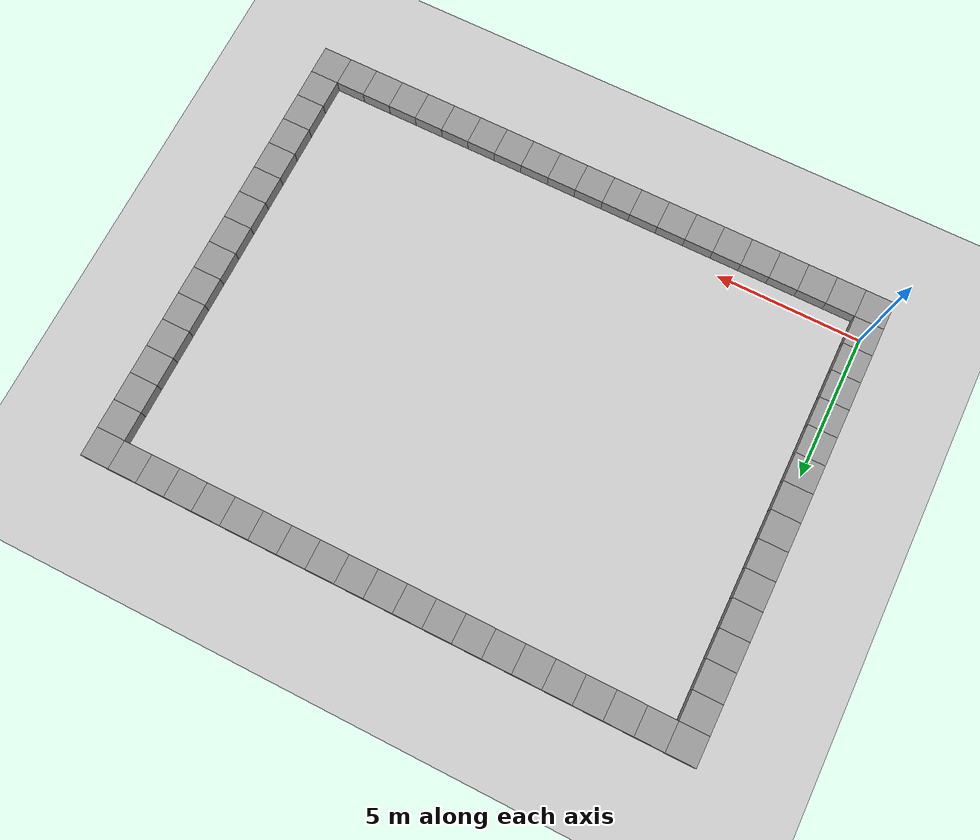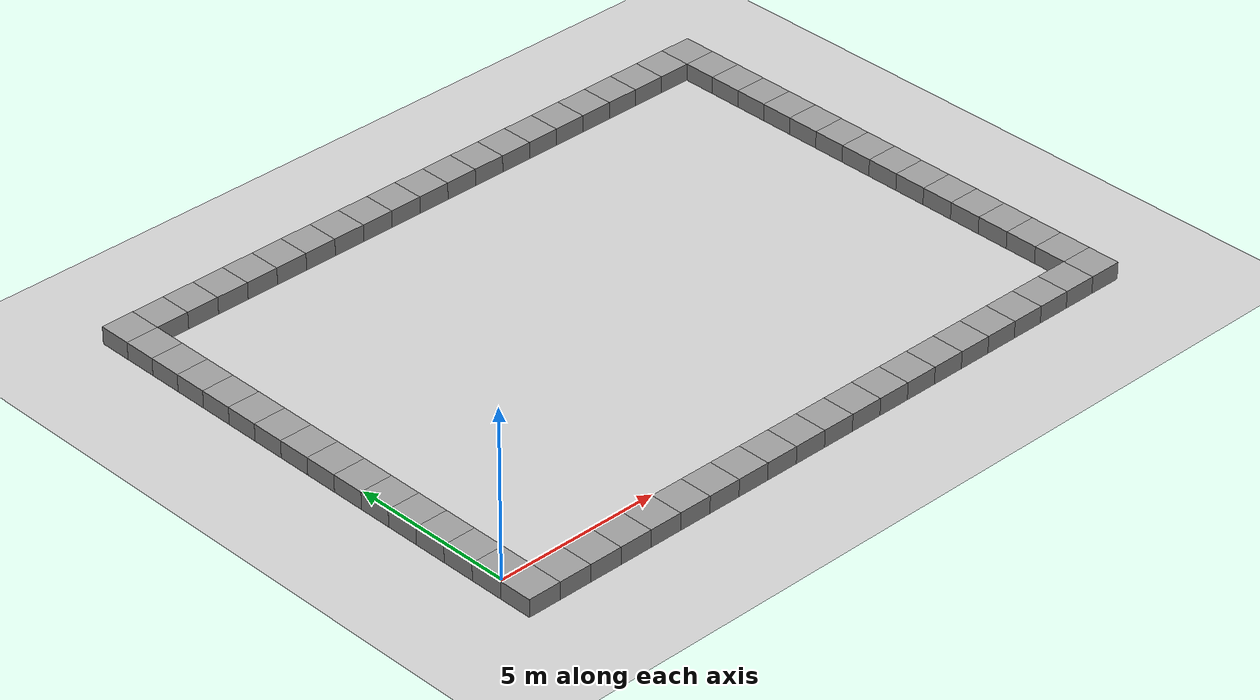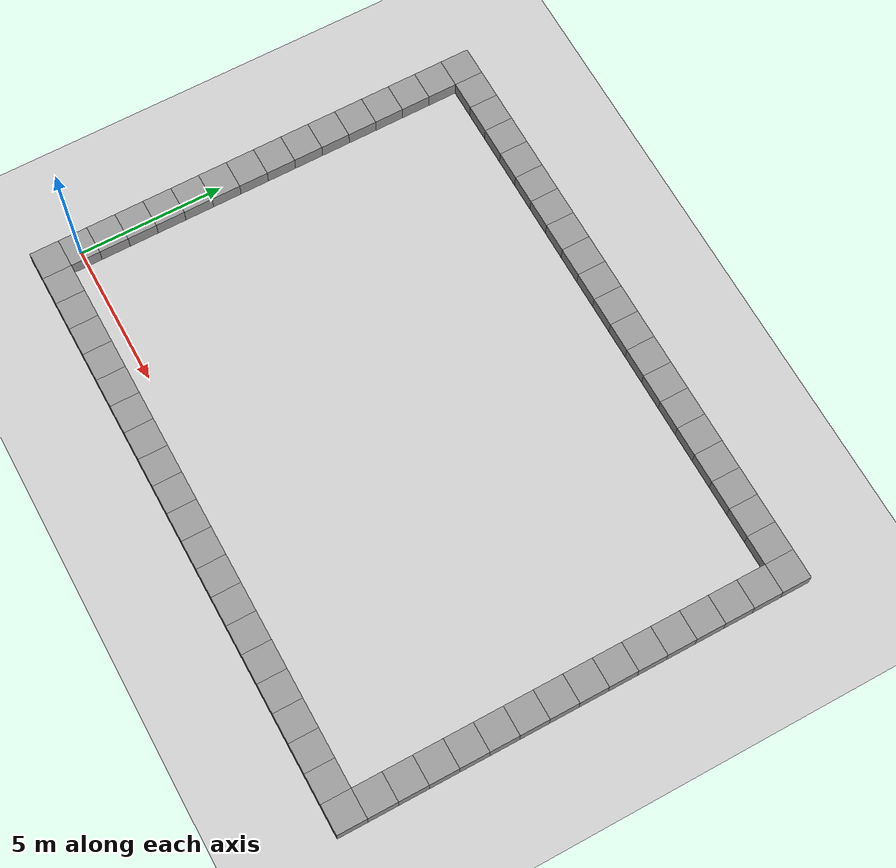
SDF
<sdf version="1.4">
 <world name="default">
  <light name="sun" type="directional">
   <pose>0 0 10 0 -0 0</pose>
   <diffuse>0.8 0.8 0.8 1</diffuse>
   <specular>0.2 0.2 0.2 1</specular>
   <attenuation>
    <range>1000</range>
    <constant>0.9</constant>
    <linear>0.01</linear>
    <quadratic>0.001</quadratic>
   </attenuation>
   <direction>-0.5 0.1 -0.9</direction>
  </light>
  <model name="ground_plane">
   <static>1</static>
   <link name="link">
    <collision name="collision">
     <geometry><plane><normal>0 0 1</normal><size>100 100</size></plane></geometry>
     <surface><friction><ode><mu>100</mu><mu2>50</mu2></ode></friction></surface>
    </collision>
    <visual name="visual">
     <cast_shadows>0</cast_shadows>
     <geometry><plane><normal>0 0 1</normal><size>100 100</size></plane></geometry>
     <material>
      <script><uri>file://media/materials/scripts/gazebo.material</uri><name>Gazebo/Grey</name></script>
     </material>
    </visual>
    <velocity_decay><linear>0</linear><angular>0</angular></velocity_decay>
   </link>
  </model>
  <physics type="ode">
   <max_step_size>0.001</max_step_size>
   <real_time_factor>1</real_time_factor>
   <real_time_update_rate>1000</real_time_update_rate>
   <gravity>0 0 -9.8</gravity>
  </physics>
  <scene><ambient>0.4 0.4 0.4 1</ambient><background>0.7 0.7 0.7 1</background><shadows>1</shadows></scene>
  <spherical_coordinates>
   <surface_model>EARTH_WGS84</surface_model>
   <latitude_deg>0</latitude_deg>
   <longitude_deg>0</longitude_deg>
   <elevation>0</elevation>
   <heading_deg>0</heading_deg>
  </spherical_coordinates>
  <model name="unit_box_1">
   <pose>0 -1 0 0 -0 0</pose>
   <link name="link">
    <inertial>
     <mass>1</mass>
     <inertia><ixx>1</ixx><ixy>0</ixy><ixz>0</ixz><iyy>1</iyy><iyz>0</iyz><izz>1</izz></inertia>
    </inertial>
    <collision name="collision"><geometry><box><size>1 1 1</size></box></geometry></collision>
    <visual name="visual">
     <geometry><box><size>1 1 1</size></box></geometry>
     <material>
      <script><uri>file://media/materials/scripts/gazebo.material</uri><name>Gazebo/Grey</name></script>
     </material>
    </visual>
    <velocity_decay><linear>0</linear><angular>0</angular></velocity_decay>
   </link>
   <static>1</static>
  </model>
  <model name="unit_box_2">
   <pose>1 -1 0 0 -0 0</pose>
   <link name="link">
    <inertial>
     <mass>1</mass>
     <inertia><ixx>1</ixx><ixy>0</ixy><ixz>0</ixz><iyy>1</iyy><iyz>0</iyz><izz>1</izz></inertia>
    </inertial>
    <collision name="collision"><geometry><box><size>1 1 1</size></box></geometry></collision>
    <visual name="visual">
     <geometry><box><size>1 1 1</size></box></geometry>
     <material>
      <script><uri>file://media/materials/scripts/gazebo.material</uri><name>Gazebo/Grey</name></script>
     </material>
    </visual>
    <velocity_decay><linear>0</linear><angular>0</angular></velocity_decay>
   </link>
   <static>1</static>
  </model>
  <model name="unit_box_3">
   <pose>2 -1 0 0 -0 0</pose>
   <link name="link">
    <inertial>
     <mass>1</mass>
     <inertia><ixx>1</ixx><ixy>0</ixy><ixz>0</ixz><iyy>1</iyy><iyz>0</iyz><izz>1</izz></inertia>
    </inertial>
    <collision name="collision"><geometry><box><size>1 1 1</size></box></geometry></collision>
    <visual name="visual">
     <geometry><box><size>1 1 1</size></box></geometry>
     <material>
      <script><uri>file://media/materials/scripts/gazebo.material</uri><name>Gazebo/Grey</name></script>
     </material>
    </visual>
    <velocity_decay><linear>0</linear><angular>0</angular></velocity_decay>
   </link>
   <static>1</static>
  </model>
  <model name="unit_box_4">
   <pose>3 -1 0 0 -0 0</pose>
   <link name="link">
    <inertial>
     <mass>1</mass>
     <inertia><ixx>1</ixx><ixy>0</ixy><ixz>0</ixz><iyy>1</iyy><iyz>0</iyz><izz>1</izz></inertia>
    </inertial>
    <collision name="collision"><geometry><box><size>1 1 1</size></box></geometry></collision>
    <visual name="visual">
     <geometry><box><size>1 1 1</size></box></geometry>
     <material>
      <script><uri>file://media/materials/scripts/gazebo.material</uri><name>Gazebo/Grey</name></script>
     </material>
    </visual>
    <velocity_decay><linear>0</linear><angular>0</angular></velocity_decay>
   </link>
   <static>1</static>
  </model>
  <model name="unit_box_5">
   <pose>4 -1 0 0 -0 0</pose>
   <link name="link">
    <inertial>
     <mass>1</mass>
     <inertia><ixx>1</ixx><ixy>0</ixy><ixz>0</ixz><iyy>1</iyy><iyz>0</iyz><izz>1</izz></inertia>
    </inertial>
    <collision name="collision"><geometry><box><size>1 1 1</size></box></geometry></collision>
    <visual name="visual">
     <geometry><box><size>1 1 1</size></box></geometry>
     <material>
      <script><uri>file://media/materials/scripts/gazebo.material</uri><name>Gazebo/Grey</name></script>
     </material>
    </visual>
    <velocity_decay><linear>0</linear><angular>0</angular></velocity_decay>
   </link>
   <static>1</static>
  </model>
  <model name="unit_box_6">
   <pose>5 -1 0 0 -0 0</pose>
   <link name="link">
    <inertial>
     <mass>1</mass>
     <inertia><ixx>1</ixx><ixy>0</ixy><ixz>0</ixz><iyy>1</iyy><iyz>0</iyz><izz>1</izz></inertia>
    </inertial>
    <collision name="collision"><geometry><box><size>1 1 1</size></box></geometry></collision>
    <visual name="visual">
     <geometry><box><size>1 1 1</size></box></geometry>
     <material>
      <script><uri>file://media/materials/scripts/gazebo.material</uri><name>Gazebo/Grey</name></script>
     </material>
    </visual>
    <velocity_decay><linear>0</linear><angular>0</angular></velocity_decay>
   </link>
   <static>1</static>
  </model>
  <model name="unit_box_7">
   <pose>6 -1 0 0 -0 0</pose>
   <link name="link">
    <inertial>
     <mass>1</mass>
     <inertia><ixx>1</ixx><ixy>0</ixy><ixz>0</ixz><iyy>1</iyy><iyz>0</iyz><izz>1</izz></inertia>
    </inertial>
    <collision name="collision"><geometry><box><size>1 1 1</size></box></geometry></collision>
    <visual name="visual">
     <geometry><box><size>1 1 1</size></box></geometry>
     <material>
      <script><uri>file://media/materials/scripts/gazebo.material</uri><name>Gazebo/Grey</name></script>
     </material>
    </visual>
    <velocity_decay><linear>0</linear><angular>0</angular></velocity_decay>
   </link>
   <static>1</static>
  </model>
  <model name="unit_box_8">
   <pose>7 -1 0 0 -0 0</pose>
   <link name="link">
    <inertial>
     <mass>1</mass>
     <inertia><ixx>1</ixx><ixy>0</ixy><ixz>0</ixz><iyy>1</iyy><iyz>0</iyz><izz>1</izz></inertia>
    </inertial>
    <collision name="collision"><geometry><box><size>1 1 1</size></box></geometry></collision>
    <visual name="visual">
     <geometry><box><size>1 1 1</size></box></geometry>
     <material>
      <script><uri>file://media/materials/scripts/gazebo.material</uri><name>Gazebo/Grey</name></script>
     </material>
    </visual>
    <velocity_decay><linear>0</linear><angular>0</angular></velocity_decay>
   </link>
   <static>1</static>
  </model>
  <model name="unit_box_9">
   <pose>8 -1 0 0 -0 0</pose>
   <link name="link">
    <inertial>
     <mass>1</mass>
     <inertia><ixx>1</ixx><ixy>0</ixy><ixz>0</ixz><iyy>1</iyy><iyz>0</iyz><izz>1</izz></inertia>
    </inertial>
    <collision name="collision"><geometry><box><size>1 1 1</size></box></geometry></collision>
    <visual name="visual">
     <geometry><box><size>1 1 1</size></box></geometry>
     <material>
      <script><uri>file://media/materials/scripts/gazebo.material</uri><name>Gazebo/Grey</name></script>
     </material>
    </visual>
    <velocity_decay><linear>0</linear><angular>0</angular></velocity_decay>
   </link>
   <static>1</static>
  </model>
  <model name="unit_box_10">
   <pose>9 -1 0 0 -0 0</pose>
   <link name="link">
    <inertial>
     <mass>1</mass>
     <inertia><ixx>1</ixx><ixy>0</ixy><ixz>0</ixz><iyy>1</iyy><iyz>0</iyz><izz>1</izz></inertia>
    </inertial>
    <collision name="collision"><geometry><box><size>1 1 1</size></box></geometry></collision>
    <visual name="visual">
     <geometry><box><size>1 1 1</size></box></geometry>
     <material>
      <script><uri>file://media/materials/scripts/gazebo.material</uri><name>Gazebo/Grey</name></script>
     </material>
    </visual>
    <velocity_decay><linear>0</linear><angular>0</angular></velocity_decay>
   </link>
   <static>1</static>
  </model>
  <model name="unit_box_11">
   <pose>10 -1 0 0 -0 0</pose>
   <link name="link">
    <inertial>
     <mass>1</mass>
     <inertia><ixx>1</ixx><ixy>0</ixy><ixz>0</ixz><iyy>1</iyy><iyz>0</iyz><izz>1</izz></inertia>
    </inertial>
    <collision name="collision"><geometry><box><size>1 1 1</size></box></geometry></collision>
    <visual name="visual">
     <geometry><box><size>1 1 1</size></box></geometry>
     <material>
      <script><uri>file://media/materials/scripts/gazebo.material</uri><name>Gazebo/Grey</name></script>
     </material>
    </visual>
    <velocity_decay><linear>0</linear><angular>0</angular></velocity_decay>
   </link>
   <static>1</static>
  </model>
  <model name="unit_box_12">
   <pose>11 -1 0 0 -0 0</pose>
   <link name="link">
    <inertial>
     <mass>1</mass>
     <inertia><ixx>1</ixx><ixy>0</ixy><ixz>0</ixz><iyy>1</iyy><iyz>0</iyz><izz>1</izz></inertia>
    </inertial>
    <collision name="collision"><geometry><box><size>1 1 1</size></box></geometry></collision>
    <visual name="visual">
     <geometry><box><size>1 1 1</size></box></geometry>
     <material>
      <script><uri>file://media/materials/scripts/gazebo.material</uri><name>Gazebo/Grey</name></script>
     </material>
    </visual>
    <velocity_decay><linear>0</linear><angular>0</angular></velocity_decay>
   </link>
   <static>1</static>
  </model>
  <model name="unit_box_13">
   <link name="link">
    <inertial>
     <mass>1</mass>
     <inertia><ixx>1</ixx><ixy>0</ixy><ixz>0</ixz><iyy>1</iyy><iyz>0</iyz><izz>1</izz></inertia>
    </inertial>
    <collision name="collision"><geometry><box><size>1 1 1</size></box></geometry></collision>
    <visual name="visual">
     <geometry><box><size>1 1 1</size></box></geometry>
     <material>
      <script><uri>file://media/materials/scripts/gazebo.material</uri><name>Gazebo/Grey</name></script>
     </material>
    </visual>
    <velocity_decay><linear>0</linear><angular>0</angular></velocity_decay>
   </link>
   <static>1</static>
  </model>
  <model name="unit_box_14">
   <pose>0 1 0 0 -0 0</pose>
   <link name="link">
    <inertial>
     <mass>1</mass>
     <inertia><ixx>1</ixx><ixy>0</ixy><ixz>0</ixz><iyy>1</iyy><iyz>0</iyz><izz>1</izz></inertia>
    </inertial>
    <collision name="collision"><geometry><box><size>1 1 1</size></box></geometry></collision>
    <visual name="visual">
     <geometry><box><size>1 1 1</size></box></geometry>
     <material>
      <script><uri>file://media/materials/scripts/gazebo.material</uri><name>Gazebo/Grey</name></script>
     </material>
    </visual>
    <velocity_decay><linear>0</linear><angular>0</angular></velocity_decay>
   </link>
   <static>1</static>
  </model>
  <model name="unit_box_15">
   <pose>0 2 0 0 -0 0</pose>
   <link name="link">
    <inertial>
     <mass>1</mass>
     <inertia><ixx>1</ixx><ixy>0</ixy><ixz>0</ixz><iyy>1</iyy><iyz>0</iyz><izz>1</izz></inertia>
    </inertial>
    <collision name="collision"><geometry><box><size>1 1 1</size></box></geometry></collision>
    <visual name="visual">
     <geometry><box><size>1 1 1</size></box></geometry>
     <material>
      <script><uri>file://media/materials/scripts/gazebo.material</uri><name>Gazebo/Grey</name></script>
     </material>
    </visual>
    <velocity_decay><linear>0</linear><angular>0</angular></velocity_decay>
   </link>
   <static>1</static>
  </model>
  <model name="unit_box_16">
   <pose>0 3 0 0 -0 0</pose>
   <link name="link">
    <inertial>
     <mass>1</mass>
     <inertia><ixx>1</ixx><ixy>0</ixy><ixz>0</ixz><iyy>1</iyy><iyz>0</iyz><izz>1</izz></inertia>
    </inertial>
    <collision name="collision"><geometry><box><size>1 1 1</size></box></geometry></collision>
    <visual name="visual">
     <geometry><box><size>1 1 1</size></box></geometry>
     <material>
      <script><uri>file://media/materials/scripts/gazebo.material</uri><name>Gazebo/Grey</name></script>
     </material>
    </visual>
    <velocity_decay><linear>0</linear><angular>0</angular></velocity_decay>
   </link>
   <static>1</static>
  </model>
  <model name="unit_box_17">
   <pose>0 4 0 0 -0 0</pose>
   <link name="link">
    <inertial>
     <mass>1</mass>
     <inertia><ixx>1</ixx><ixy>0</ixy><ixz>0</ixz><iyy>1</iyy><iyz>0</iyz><izz>1</izz></inertia>
    </inertial>
    <collision name="collision"><geometry><box><size>1 1 1</size></box></geometry></collision>
    <visual name="visual">
     <geometry><box><size>1 1 1</size></box></geometry>
     <material>
      <script><uri>file://media/materials/scripts/gazebo.material</uri><name>Gazebo/Grey</name></script>
     </material>
    </visual>
    <velocity_decay><linear>0</linear><angular>0</angular></velocity_decay>
   </link>
   <static>1</static>
  </model>
  <model name="unit_box_18">
   <pose>0 5 0 0 -0 0</pose>
   <link name="link">
    <inertial>
     <mass>1</mass>
     <inertia><ixx>1</ixx><ixy>0</ixy><ixz>0</ixz><iyy>1</iyy><iyz>0</iyz><izz>1</izz></inertia>
    </inertial>
    <collision name="collision"><geometry><box><size>1 1 1</size></box></geometry></collision>
    <visual name="visual">
     <geometry><box><size>1 1 1</size></box></geometry>
     <material>
      <script><uri>file://media/materials/scripts/gazebo.material</uri><name>Gazebo/Grey</name></script>
     </material>
    </visual>
    <velocity_decay><linear>0</linear><angular>0</angular></velocity_decay>
   </link>
   <static>1</static>
  </model>
  <model name="unit_box_19">
   <pose>0 6 0 0 -0 0</pose>
   <link name="link">
    <inertial>
     <mass>1</mass>
     <inertia><ixx>1</ixx><ixy>0</ixy><ixz>0</ixz><iyy>1</iyy><iyz>0</iyz><izz>1</izz></inertia>
    </inertial>
    <collision name="collision"><geometry><box><size>1 1 1</size></box></geometry></collision>
    <visual name="visual">
     <geometry><box><size>1 1 1</size></box></geometry>
     <material>
      <script><uri>file://media/materials/scripts/gazebo.material</uri><name>Gazebo/Grey</name></script>
     </material>
    </visual>
    <velocity_decay><linear>0</linear><angular>0</angular></velocity_decay>
   </link>
   <static>1</static>
  </model>
  <model name="unit_box_20">
   <pose>0 7 0 0 -0 0</pose>
   <link name="link">
    <inertial>
     <mass>1</mass>
     <inertia><ixx>1</ixx><ixy>0</ixy><ixz>0</ixz><iyy>1</iyy><iyz>0</iyz><izz>1</izz></inertia>
    </inertial>
    <collision name="collision"><geometry><box><size>1 1 1</size></box></geometry></collision>
    <visual name="visual">
     <geometry><box><size>1 1 1</size></box></geometry>
     <material>
      <script><uri>file://media/materials/scripts/gazebo.material</uri><name>Gazebo/Grey</name></script>
     </material>
    </visual>
    <velocity_decay><linear>0</linear><angular>0</angular></velocity_decay>
   </link>
   <static>1</static>
  </model>
  <model name="unit_box_21">
   <pose>0 8 0 0 -0 0</pose>
   <link name="link">
    <inertial>
     <mass>1</mass>
     <inertia><ixx>1</ixx><ixy>0</ixy><ixz>0</ixz><iyy>1</iyy><iyz>0</iyz><izz>1</izz></inertia>
    </inertial>
    <collision name="collision"><geometry><box><size>1 1 1</size></box></geometry></collision>
    <visual name="visual">
     <geometry><box><size>1 1 1</size></box></geometry>
     <material>
      <script><uri>file://media/materials/scripts/gazebo.material</uri><name>Gazebo/Grey</name></script>
     </material>
    </visual>
    <velocity_decay><linear>0</linear><angular>0</angular></velocity_decay>
   </link>
   <static>1</static>
  </model>
  <model name="unit_box_22">
   <pose>0 9 0 0 -0 0</pose>
   <link name="link">
    <inertial>
     <mass>1</mass>
     <inertia><ixx>1</ixx><ixy>0</ixy><ixz>0</ixz><iyy>1</iyy><iyz>0</iyz><izz>1</izz></inertia>
    </inertial>
    <collision name="collision"><geometry><box><size>1 1 1</size></box></geometry></collision>
    <visual name="visual">
     <geometry><box><size>1 1 1</size></box></geometry>
     <material>
      <script><uri>file://media/materials/scripts/gazebo.material</uri><name>Gazebo/Grey</name></script>
     </material>
    </visual>
    <velocity_decay><linear>0</linear><angular>0</angular></velocity_decay>
   </link>
   <static>1</static>
  </model>
  <model name="unit_box_23">
   <pose>0 10 0 0 -0 0</pose>
   <link name="link">
    <inertial>
     <mass>1</mass>
     <inertia><ixx>1</ixx><ixy>0</ixy><ixz>0</ixz><iyy>1</iyy><iyz>0</iyz><izz>1</izz></inertia>
    </inertial>
    <collision name="collision"><geometry><box><size>1 1 1</size></box></geometry></collision>
    <visual name="visual">
     <geometry><box><size>1 1 1</size></box></geometry>
     <material>
      <script><uri>file://media/materials/scripts/gazebo.material</uri><name>Gazebo/Grey</name></script>
     </material>
    </visual>
    <velocity_decay><linear>0</linear><angular>0</angular></velocity_decay>
   </link>
   <static>1</static>
  </model>
  <model name="unit_box_24">
   <pose>0 11 0 0 -0 0</pose>
   <link name="link">
    <inertial>
     <mass>1</mass>
     <inertia><ixx>1</ixx><ixy>0</ixy><ixz>0</ixz><iyy>1</iyy><iyz>0</iyz><izz>1</izz></inertia>
    </inertial>
    <collision name="collision"><geometry><box><size>1 1 1</size></box></geometry></collision>
    <visual name="visual">
     <geometry><box><size>1 1 1</size></box></geometry>
     <material>
      <script><uri>file://media/materials/scripts/gazebo.material</uri><name>Gazebo/Grey</name></script>
     </material>
    </visual>
    <velocity_decay><linear>0</linear><angular>0</angular></velocity_decay>
   </link>
   <static>1</static>
  </model>
  <model name="unit_box_25">
   <pose>0 12 0 0 -0 0</pose>
   <link name="link">
    <inertial>
     <mass>1</mass>
     <inertia><ixx>1</ixx><ixy>0</ixy><ixz>0</ixz><iyy>1</iyy><iyz>0</iyz><izz>1</izz></inertia>
    </inertial>
    <collision name="collision"><geometry><box><size>1 1 1</size></box></geometry></collision>
    <visual name="visual">
     <geometry><box><size>1 1 1</size></box></geometry>
     <material>
      <script><uri>file://media/materials/scripts/gazebo.material</uri><name>Gazebo/Grey</name></script>
     </material>
    </visual>
    <velocity_decay><linear>0</linear><angular>0</angular></velocity_decay>
   </link>
   <static>1</static>
  </model>
  <model name="unit_box_26">
   <pose>0 13 0 0 -0 0</pose>
   <link name="link">
    <inertial>
     <mass>1</mass>
     <inertia><ixx>1</ixx><ixy>0</ixy><ixz>0</ixz><iyy>1</iyy><iyz>0</iyz><izz>1</izz></inertia>
    </inertial>
    <collision name="collision"><geometry><box><size>1 1 1</size></box></geometry></collision>
    <visual name="visual">
     <geometry><box><size>1 1 1</size></box></geometry>
     <material>
      <script><uri>file://media/materials/scripts/gazebo.material</uri><name>Gazebo/Grey</name></script>
     </material>
    </visual>
    <velocity_decay><linear>0</linear><angular>0</angular></velocity_decay>
   </link>
   <static>1</static>
  </model>
  <model name="unit_box_27">
   <pose>0 14 0 0 -0 0</pose>
   <link name="link">
    <inertial>
     <mass>1</mass>
     <inertia><ixx>1</ixx><ixy>0</ixy><ixz>0</ixz><iyy>1</iyy><iyz>0</iyz><izz>1</izz></inertia>
    </inertial>
    <collision name="collision"><geometry><box><size>1 1 1</size></box></geometry></collision>
    <visual name="visual">
     <geometry><box><size>1 1 1</size></box></geometry>
     <material>
      <script><uri>file://media/materials/scripts/gazebo.material</uri><name>Gazebo/Grey</name></script>
     </material>
    </visual>
    <velocity_decay><linear>0</linear><angular>0</angular></velocity_decay>
   </link>
   <static>1</static>
  </model>
  <model name="unit_box_28">
   <pose>1 14 0 0 -0 0</pose>
   <link name="link">
    <inertial>
     <mass>1</mass>
     <inertia><ixx>1</ixx><ixy>0</ixy><ixz>0</ixz><iyy>1</iyy><iyz>0</iyz><izz>1</izz></inertia>
    </inertial>
    <collision name="collision"><geometry><box><size>1 1 1</size></box></geometry></collision>
    <visual name="visual">
     <geometry><box><size>1 1 1</size></box></geometry>
     <material>
      <script><uri>file://media/materials/scripts/gazebo.material</uri><name>Gazebo/Grey</name></script>
     </material>
    </visual>
    <velocity_decay><linear>0</linear><angular>0</angular></velocity_decay>
   </link>
   <static>1</static>
  </model>
  <model name="unit_box_29">
   <pose>2 14 0 0 -0 0</pose>
   <link name="link">
    <inertial>
     <mass>1</mass>
     <inertia><ixx>1</ixx><ixy>0</ixy><ixz>0</ixz><iyy>1</iyy><iyz>0</iyz><izz>1</izz></inertia>
    </inertial>
    <collision name="collision"><geometry><box><size>1 1 1</size></box></geometry></collision>
    <visual name="visual">
     <geometry><box><size>1 1 1</size></box></geometry>
     <material>
      <script><uri>file://media/materials/scripts/gazebo.material</uri><name>Gazebo/Grey</name></script>
     </material>
    </visual>
    <velocity_decay><linear>0</linear><angular>0</angular></velocity_decay>
   </link>
   <static>1</static>
  </model>
  <model name="unit_box_30">
   <pose>3 14 0 0 -0 0</pose>
   <link name="link">
    <inertial>
     <mass>1</mass>
     <inertia><ixx>1</ixx><ixy>0</ixy><ixz>0</ixz><iyy>1</iyy><iyz>0</iyz><izz>1</izz></inertia>
    </inertial>
    <collision name="collision"><geometry><box><size>1 1 1</size></box></geometry></collision>
    <visual name="visual">
     <geometry><box><size>1 1 1</size></box></geometry>
     <material>
      <script><uri>file://media/materials/scripts/gazebo.material</uri><name>Gazebo/Grey</name></script>
     </material>
    </visual>
    <velocity_decay><linear>0</linear><angular>0</angular></velocity_decay>
   </link>
   <static>1</static>
  </model>
  <model name="unit_box_31">
   <pose>4 14 0 0 -0 0</pose>
   <link name="link">
    <inertial>
     <mass>1</mass>
     <inertia><ixx>1</ixx><ixy>0</ixy><ixz>0</ixz><iyy>1</iyy><iyz>0</iyz><izz>1</izz></inertia>
    </inertial>
    <collision name="collision"><geometry><box><size>1 1 1</size></box></geometry></collision>
    <visual name="visual">
     <geometry><box><size>1 1 1</size></box></geometry>
     <material>
      <script><uri>file://media/materials/scripts/gazebo.material</uri><name>Gazebo/Grey</name></script>
     </material>
    </visual>
    <velocity_decay><linear>0</linear><angular>0</angular></velocity_decay>
   </link>
   <static>1</static>
  </model>
  <model name="unit_box_32">
   <pose>5 14 0 0 -0 0</pose>
   <link name="link">
    <inertial>
     <mass>1</mass>
     <inertia><ixx>1</ixx><ixy>0</ixy><ixz>0</ixz><iyy>1</iyy><iyz>0</iyz><izz>1</izz></inertia>
    </inertial>
    <collision name="collision"><geometry><box><size>1 1 1</size></box></geometry></collision>
    <visual name="visual">
     <geometry><box><size>1 1 1</size></box></geometry>
     <material>
      <script><uri>file://media/materials/scripts/gazebo.material</uri><name>Gazebo/Grey</name></script>
     </material>
    </visual>
    <velocity_decay><linear>0</linear><angular>0</angular></velocity_decay>
   </link>
   <static>1</static>
  </model>
  <model name="unit_box_33">
   <pose>6 14 0 0 -0 0</pose>
   <link name="link">
    <inertial>
     <mass>1</mass>
     <inertia><ixx>1</ixx><ixy>0</ixy><ixz>0</ixz><iyy>1</iyy><iyz>0</iyz><izz>1</izz></inertia>
    </inertial>
    <collision name="collision"><geometry><box><size>1 1 1</size></box></geometry></collision>
    <visual name="visual">
     <geometry><box><size>1 1 1</size></box></geometry>
     <material>
      <script><uri>file://media/materials/scripts/gazebo.material</uri><name>Gazebo/Grey</name></script>
     </material>
    </visual>
    <velocity_decay><linear>0</linear><angular>0</angular></velocity_decay>
   </link>
   <static>1</static>
  </model>
  <model name="unit_box_34">
   <pose>7 14 0 0 -0 0</pose>
   <link name="link">
    <inertial>
     <mass>1</mass>
     <inertia><ixx>1</ixx><ixy>0</ixy><ixz>0</ixz><iyy>1</iyy><iyz>0</iyz><izz>1</izz></inertia>
    </inertial>
    <collision name="collision"><geometry><box><size>1 1 1</size></box></geometry></collision>
    <visual name="visual">
     <geometry><box><size>1 1 1</size></box></geometry>
     <material>
      <script><uri>file://media/materials/scripts/gazebo.material</uri><name>Gazebo/Grey</name></script>
     </material>
    </visual>
    <velocity_decay><linear>0</linear><angular>0</angular></velocity_decay>
   </link>
   <static>1</static>
  </model>
  <model name="unit_box_35">
   <pose>8 14 0 0 -0 0</pose>
   <link name="link">
    <inertial>
     <mass>1</mass>
     <inertia><ixx>1</ixx><ixy>0</ixy><ixz>0</ixz><iyy>1</iyy><iyz>0</iyz><izz>1</izz></inertia>
    </inertial>
    <collision name="collision"><geometry><box><size>1 1 1</size></box></geometry></collision>
    <visual name="visual">
     <geometry><box><size>1 1 1</size></box></geometry>
     <material>
      <script><uri>file://media/materials/scripts/gazebo.material</uri><name>Gazebo/Grey</name></script>
     </material>
    </visual>
    <velocity_decay><linear>0</linear><angular>0</angular></velocity_decay>
   </link>
   <static>1</static>
  </model>
  <model name="unit_box_36">
   <pose>9 14 0 0 -0 0</pose>
   <link name="link">
    <inertial>
     <mass>1</mass>
     <inertia><ixx>1</ixx><ixy>0</ixy><ixz>0</ixz><iyy>1</iyy><iyz>0</iyz><izz>1</izz></inertia>
    </inertial>
    <collision name="collision"><geometry><box><size>1 1 1</size></box></geometry></collision>
    <visual name="visual">
     <geometry><box><size>1 1 1</size></box></geometry>
     <material>
      <script><uri>file://media/materials/scripts/gazebo.material</uri><name>Gazebo/Grey</name></script>
     </material>
    </visual>
    <velocity_decay><linear>0</linear><angular>0</angular></velocity_decay>
   </link>
   <static>1</static>
  </model>
  <model name="unit_box_37">
   <pose>10 14 0 0 -0 0</pose>
   <link name="link">
    <inertial>
     <mass>1</mass>
     <inertia><ixx>1</ixx><ixy>0</ixy><ixz>0</ixz><iyy>1</iyy><iyz>0</iyz><izz>1</izz></inertia>
    </inertial>
    <collision name="collision"><geometry><box><size>1 1 1</size></box></geometry></collision>
    <visual name="visual">
     <geometry><box><size>1 1 1</size></box></geometry>
     <material>
      <script><uri>file://media/materials/scripts/gazebo.material</uri><name>Gazebo/Grey</name></script>
     </material>
    </visual>
    <velocity_decay><linear>0</linear><angular>0</angular></velocity_decay>
   </link>
   <static>1</static>
  </model>
  <model name="unit_box_38">
   <pose>11 14 0 0 -0 0</pose>
   <link name="link">
    <inertial>
     <mass>1</mass>
     <inertia><ixx>1</ixx><ixy>0</ixy><ixz>0</ixz><iyy>1</iyy><iyz>0</iyz><izz>1</izz></inertia>
    </inertial>
    <collision name="collision"><geometry><box><size>1 1 1</size></box></geometry></collision>
    <visual name="visual">
     <geometry><box><size>1 1 1</size></box></geometry>
     <material>
      <script><uri>file://media/materials/scripts/gazebo.material</uri><name>Gazebo/Grey</name></script>
     </material>
    </visual>
    <velocity_decay><linear>0</linear><angular>0</angular></velocity_decay>
   </link>
   <static>1</static>
  </model>
  <model name="unit_box_39">
   <pose>12 14 0 0 -0 0</pose>
   <link name="link">
    <inertial>
     <mass>1</mass>
     <inertia><ixx>1</ixx><ixy>0</ixy><ixz>0</ixz><iyy>1</iyy><iyz>0</iyz><izz>1</izz></inertia>
    </inertial>
    <collision name="collision"><geometry><box><size>1 1 1</size></box></geometry></collision>
    <visual name="visual">
     <geometry><box><size>1 1 1</size></box></geometry>
     <material>
      <script><uri>file://media/materials/scripts/gazebo.material</uri><name>Gazebo/Grey</name></script>
     </material>
    </visual>
    <velocity_decay><linear>0</linear><angular>0</angular></velocity_decay>
   </link>
   <static>1</static>
  </model>
  <model name="unit_box_40">
   <pose>13 14 0 0 -0 0</pose>
   <link name="link">
    <inertial>
     <mass>1</mass>
     <inertia><ixx>1</ixx><ixy>0</ixy><ixz>0</ixz><iyy>1</iyy><iyz>0</iyz><izz>1</izz></inertia>
    </inertial>
    <collision name="collision"><geometry><box><size>1 1 1</size></box></geometry></collision>
    <visual name="visual">
     <geometry><box><size>1 1 1</size></box></geometry>
     <material>
      <script><uri>file://media/materials/scripts/gazebo.material</uri><name>Gazebo/Grey</name></script>
     </material>
    </visual>
    <velocity_decay><linear>0</linear><angular>0</angular></velocity_decay>
   </link>
   <static>1</static>
  </model>
  <model name="unit_box_41">
   <pose>14 14 0 0 -0 0</pose>
   <link name="link">
    <inertial>
     <mass>1</mass>
     <inertia><ixx>1</ixx><ixy>0</ixy><ixz>0</ixz><iyy>1</iyy><iyz>0</iyz><izz>1</izz></inertia>
    </inertial>
    <collision name="collision"><geometry><box><size>1 1 1</size></box></geometry></collision>
    <visual name="visual">
     <geometry><box><size>1 1 1</size></box></geometry>
     <material>
      <script><uri>file://media/materials/scripts/gazebo.material</uri><name>Gazebo/Grey</name></script>
     </material>
    </visual>
    <velocity_decay><linear>0</linear><angular>0</angular></velocity_decay>
   </link>
   <static>1</static>
  </model>
  <model name="unit_box_42">
   <pose>15 14 0 0 -0 0</pose>
   <link name="link">
    <inertial>
     <mass>1</mass>
     <inertia><ixx>1</ixx><ixy>0</ixy><ixz>0</ixz><iyy>1</iyy><iyz>0</iyz><izz>1</izz></inertia>
    </inertial>
    <collision name="collision"><geometry><box><size>1 1 1</size></box></geometry></collision>
    <visual name="visual">
     <geometry><box><size>1 1 1</size></box></geometry>
     <material>
      <script><uri>file://media/materials/scripts/gazebo.material</uri><name>Gazebo/Grey</name></script>
     </material>
    </visual>
    <velocity_decay><linear>0</linear><angular>0</angular></velocity_decay>
   </link>
   <static>1</static>
  </model>
  <model name="unit_box_43">
   <pose>16 14 0 0 -0 0</pose>
   <link name="link">
    <inertial>
     <mass>1</mass>
     <inertia><ixx>1</ixx><ixy>0</ixy><ixz>0</ixz><iyy>1</iyy><iyz>0</iyz><izz>1</izz></inertia>
    </inertial>
    <collision name="collision"><geometry><box><size>1 1 1</size></box></geometry></collision>
    <visual name="visual">
     <geometry><box><size>1 1 1</size></box></geometry>
     <material>
      <script><uri>file://media/materials/scripts/gazebo.material</uri><name>Gazebo/Grey</name></script>
     </material>
    </visual>
    <velocity_decay><linear>0</linear><angular>0</angular></velocity_decay>
   </link>
   <static>1</static>
  </model>
  <model name="unit_box_44">
   <pose>17 14 0 0 -0 0</pose>
   <link name="link">
    <inertial>
     <mass>1</mass>
     <inertia><ixx>1</ixx><ixy>0</ixy><ixz>0</ixz><iyy>1</iyy><iyz>0</iyz><izz>1</izz></inertia>
    </inertial>
    <collision name="collision"><geometry><box><size>1 1 1</size></box></geometry></collision>
    <visual name="visual">
     <geometry><box><size>1 1 1</size></box></geometry>
     <material>
      <script><uri>file://media/materials/scripts/gazebo.material</uri><name>Gazebo/Grey</name></script>
     </material>
    </visual>
    <velocity_decay><linear>0</linear><angular>0</angular></velocity_decay>
   </link>
   <static>1</static>
  </model>
  <model name="unit_box_45">
   <pose>18 14 0 0 -0 0</pose>
   <link name="link">
    <inertial>
     <mass>1</mass>
     <inertia><ixx>1</ixx><ixy>0</ixy><ixz>0</ixz><iyy>1</iyy><iyz>0</iyz><izz>1</izz></inertia>
    </inertial>
    <collision name="collision"><geometry><box><size>1 1 1</size></box></geometry></collision>
    <visual name="visual">
     <geometry><box><size>1 1 1</size></box></geometry>
     <material>
      <script><uri>file://media/materials/scripts/gazebo.material</uri><name>Gazebo/Grey</name></script>
     </material>
    </visual>
    <velocity_decay><linear>0</linear><angular>0</angular></velocity_decay>
   </link>
   <static>1</static>
  </model>
  <model name="unit_box_46">
   <pose>19 14 0 0 -0 0</pose>
   <link name="link">
    <inertial>
     <mass>1</mass>
     <inertia><ixx>1</ixx><ixy>0</ixy><ixz>0</ixz><iyy>1</iyy><iyz>0</iyz><izz>1</izz></inertia>
    </inertial>
    <collision name="collision"><geometry><box><size>1 1 1</size></box></geometry></collision>
    <visual name="visual">
     <geometry><box><size>1 1 1</size></box></geometry>
     <material>
      <script><uri>file://media/materials/scripts/gazebo.material</uri><name>Gazebo/Grey</name></script>
     </material>
    </visual>
    <velocity_decay><linear>0</linear><angular>0</angular></velocity_decay>
   </link>
   <static>1</static>
  </model>
  <model name="unit_box_47">
   <pose>20 14 0 0 -0 0</pose>
   <link name="link">
    <inertial>
     <mass>1</mass>
     <inertia><ixx>1</ixx><ixy>0</ixy><ixz>0</ixz><iyy>1</iyy><iyz>0</iyz><izz>1</izz></inertia>
    </inertial>
    <collision name="collision"><geometry><box><size>1 1 1</size></box></geometry></collision>
    <visual name="visual">
     <geometry><box><size>1 1 1</size></box></geometry>
     <material>
      <script><uri>file://media/materials/scripts/gazebo.material</uri><name>Gazebo/Grey</name></script>
     </material>
    </visual>
    <velocity_decay><linear>0</linear><angular>0</angular></velocity_decay>
   </link>
   <static>1</static>
  </model>
  <model name="unit_box_48">
   <pose>20 13 0 0 -0 0</pose>
   <link name="link">
    <inertial>
     <mass>1</mass>
     <inertia><ixx>1</ixx><ixy>0</ixy><ixz>0</ixz><iyy>1</iyy><iyz>0</iyz><izz>1</izz></inertia>
    </inertial>
    <collision name="collision"><geometry><box><size>1 1 1</size></box></geometry></collision>
    <visual name="visual">
     <geometry><box><size>1 1 1</size></box></geometry>
     <material>
      <script><uri>file://media/materials/scripts/gazebo.material</uri><name>Gazebo/Grey</name></script>
     </material>
    </visual>
    <velocity_decay><linear>0</linear><angular>0</angular></velocity_decay>
   </link>
   <static>1</static>
  </model>
  <model name="unit_box_49">
   <pose>20 12 0 0 -0 0</pose>
   <link name="link">
    <inertial>
     <mass>1</mass>
     <inertia><ixx>1</ixx><ixy>0</ixy><ixz>0</ixz><iyy>1</iyy><iyz>0</iyz><izz>1</izz></inertia>
    </inertial>
    <collision name="collision"><geometry><box><size>1 1 1</size></box></geometry></collision>
    <visual name="visual">
     <geometry><box><size>1 1 1</size></box></geometry>
     <material>
      <script><uri>file://media/materials/scripts/gazebo.material</uri><name>Gazebo/Grey</name></script>
     </material>
    </visual>
    <velocity_decay><linear>0</linear><angular>0</angular></velocity_decay>
   </link>
   <static>1</static>
  </model>
  <model name="unit_box_50">
   <pose>20 11 0 0 -0 0</pose>
   <link name="link">
    <inertial>
     <mass>1</mass>
     <inertia><ixx>1</ixx><ixy>0</ixy><ixz>0</ixz><iyy>1</iyy><iyz>0</iyz><izz>1</izz></inertia>
    </inertial>
    <collision name="collision"><geometry><box><size>1 1 1</size></box></geometry></collision>
    <visual name="visual">
     <geometry><box><size>1 1 1</size></box></geometry>
     <material>
      <script><uri>file://media/materials/scripts/gazebo.material</uri><name>Gazebo/Grey</name></script>
     </material>
    </visual>
    <velocity_decay><linear>0</linear><angular>0</angular></velocity_decay>
   </link>
   <static>1</static>
  </model>
  <model name="unit_box_51">
   <pose>20 10 0 0 -0 0</pose>
   <link name="link">
    <inertial>
     <mass>1</mass>
     <inertia><ixx>1</ixx><ixy>0</ixy><ixz>0</ixz><iyy>1</iyy><iyz>0</iyz><izz>1</izz></inertia>
    </inertial>
    <collision name="collision"><geometry><box><size>1 1 1</size></box></geometry></collision>
    <visual name="visual">
     <geometry><box><size>1 1 1</size></box></geometry>
     <material>
      <script><uri>file://media/materials/scripts/gazebo.material</uri><name>Gazebo/Grey</name></script>
     </material>
    </visual>
    <velocity_decay><linear>0</linear><angular>0</angular></velocity_decay>
   </link>
   <static>1</static>
  </model>
  <model name="unit_box_52">
   <pose>20 9 0 0 -0 0</pose>
   <link name="link">
    <inertial>
     <mass>1</mass>
     <inertia><ixx>1</ixx><ixy>0</ixy><ixz>0</ixz><iyy>1</iyy><iyz>0</iyz><izz>1</izz></inertia>
    </inertial>
    <collision name="collision"><geometry><box><size>1 1 1</size></box></geometry></collision>
    <visual name="visual">
     <geometry><box><size>1 1 1</size></box></geometry>
     <material>
      <script><uri>file://media/materials/scripts/gazebo.material</uri><name>Gazebo/Grey</name></script>
     </material>
    </visual>
    <velocity_decay><linear>0</linear><angular>0</angular></velocity_decay>
   </link>
   <static>1</static>
  </model>
  <model name="unit_box_53">
   <pose>20 8 0 0 -0 0</pose>
   <link name="link">
    <inertial>
     <mass>1</mass>
     <inertia><ixx>1</ixx><ixy>0</ixy><ixz>0</ixz><iyy>1</iyy><iyz>0</iyz><izz>1</izz></inertia>
    </inertial>
    <collision name="collision"><geometry><box><size>1 1 1</size></box></geometry></collision>
    <visual name="visual">
     <geometry><box><size>1 1 1</size></box></geometry>
     <material>
      <script><uri>file://media/materials/scripts/gazebo.material</uri><name>Gazebo/Grey</name></script>
     </material>
    </visual>
    <velocity_decay><linear>0</linear><angular>0</angular></velocity_decay>
   </link>
   <static>1</static>
  </model>
  <model name="unit_box_54">
   <pose>20 7 0 0 -0 0</pose>
   <link name="link">
    <inertial>
     <mass>1</mass>
     <inertia><ixx>1</ixx><ixy>0</ixy><ixz>0</ixz><iyy>1</iyy><iyz>0</iyz><izz>1</izz></inertia>
    </inertial>
    <collision name="collision"><geometry><box><size>1 1 1</size></box></geometry></collision>
    <visual name="visual">
     <geometry><box><size>1 1 1</size></box></geometry>
     <material>
      <script><uri>file://media/materials/scripts/gazebo.material</uri><name>Gazebo/Grey</name></script>
     </material>
    </visual>
    <velocity_decay><linear>0</linear><angular>0</angular></velocity_decay>
   </link>
   <static>1</static>
  </model>
  <model name="unit_box_55">
   <pose>20 6 0 0 -0 0</pose>
   <link name="link">
    <inertial>
     <mass>1</mass>
     <inertia><ixx>1</ixx><ixy>0</ixy><ixz>0</ixz><iyy>1</iyy><iyz>0</iyz><izz>1</izz></inertia>
    </inertial>
    <collision name="collision"><geometry><box><size>1 1 1</size></box></geometry></collision>
    <visual name="visual">
     <geometry><box><size>1 1 1</size></box></geometry>
     <material>
      <script><uri>file://media/materials/scripts/gazebo.material</uri><name>Gazebo/Grey</name></script>
     </material>
    </visual>
    <velocity_decay><linear>0</linear><angular>0</angular></velocity_decay>
   </link>
   <static>1</static>
  </model>
  <model name="unit_box_56">
   <pose>20 5 0 0 -0 0</pose>
   <link name="link">
    <inertial>
     <mass>1</mass>
     <inertia><ixx>1</ixx><ixy>0</ixy><ixz>0</ixz><iyy>1</iyy><iyz>0</iyz><izz>1</izz></inertia>
    </inertial>
    <collision name="collision"><geometry><box><size>1 1 1</size></box></geometry></collision>
    <visual name="visual">
     <geometry><box><size>1 1 1</size></box></geometry>
     <material>
      <script><uri>file://media/materials/scripts/gazebo.material</uri><name>Gazebo/Grey</name></script>
     </material>
    </visual>
    <velocity_decay><linear>0</linear><angular>0</angular></velocity_decay>
   </link>
   <static>1</static>
  </model>
  <model name="unit_box_57">
   <pose>20 4 0 0 -0 0</pose>
   <link name="link">
    <inertial>
     <mass>1</mass>
     <inertia><ixx>1</ixx><ixy>0</ixy><ixz>0</ixz><iyy>1</iyy><iyz>0</iyz><izz>1</izz></inertia>
    </inertial>
    <collision name="collision"><geometry><box><size>1 1 1</size></box></geometry></collision>
    <visual name="visual">
     <geometry><box><size>1 1 1</size></box></geometry>
     <material>
      <script><uri>file://media/materials/scripts/gazebo.material</uri><name>Gazebo/Grey</name></script>
     </material>
    </visual>
    <velocity_decay><linear>0</linear><angular>0</angular></velocity_decay>
   </link>
   <static>1</static>
  </model>
  <model name="unit_box_58">
   <pose>20 3 0 0 -0 0</pose>
   <link name="link">
    <inertial>
     <mass>1</mass>
     <inertia><ixx>1</ixx><ixy>0</ixy><ixz>0</ixz><iyy>1</iyy><iyz>0</iyz><izz>1</izz></inertia>
    </inertial>
    <collision name="collision"><geometry><box><size>1 1 1</size></box></geometry></collision>
    <visual name="visual">
     <geometry><box><size>1 1 1</size></box></geometry>
     <material>
      <script><uri>file://media/materials/scripts/gazebo.material</uri><name>Gazebo/Grey</name></script>
     </material>
    </visual>
    <velocity_decay><linear>0</linear><angular>0</angular></velocity_decay>
   </link>
   <static>1</static>
  </model>
  <model name="unit_box_59">
   <pose>20 2 0 0 -0 0</pose>
   <link name="link">
    <inertial>
     <mass>1</mass>
     <inertia><ixx>1</ixx><ixy>0</ixy><ixz>0</ixz><iyy>1</iyy><iyz>0</iyz><izz>1</izz></inertia>
    </inertial>
    <collision name="collision"><geometry><box><size>1 1 1</size></box></geometry></collision>
    <visual name="visual">
     <geometry><box><size>1 1 1</size></box></geometry>
     <material>
      <script><uri>file://media/materials/scripts/gazebo.material</uri><name>Gazebo/Grey</name></script>
     </material>
    </visual>
    <velocity_decay><linear>0</linear><angular>0</angular></velocity_decay>
   </link>
   <static>1</static>
  </model>
  <model name="unit_box_60">
   <pose>20 1 0 0 -0 0</pose>
   <link name="link">
    <inertial>
     <mass>1</mass>
     <inertia><ixx>1</ixx><ixy>0</ixy><ixz>0</ixz><iyy>1</iyy><iyz>0</iyz><izz>1</izz></inertia>
    </inertial>
    <collision name="collision"><geometry><box><size>1 1 1</size></box></geometry></collision>
    <visual name="visual">
     <geometry><box><size>1 1 1</size></box></geometry>
     <material>
      <script><uri>file://media/materials/scripts/gazebo.material</uri><name>Gazebo/Grey</name></script>
     </material>
    </visual>
    <velocity_decay><linear>0</linear><angular>0</angular></velocity_decay>
   </link>
   <static>1</static>
  </model>
  <model name="unit_box_61">
   <pose>20 0 0 0 -0 0</pose>
   <link name="link">
    <inertial>
     <mass>1</mass>
     <inertia><ixx>1</ixx><ixy>0</ixy><ixz>0</ixz><iyy>1</iyy><iyz>0</iyz><izz>1</izz></inertia>
    </inertial>
    <collision name="collision"><geometry><box><size>1 1 1</size></box></geometry></collision>
    <visual name="visual">
     <geometry><box><size>1 1 1</size></box></geometry>
     <material>
      <script><uri>file://media/materials/scripts/gazebo.material</uri><name>Gazebo/Grey</name></script>
     </material>
    </visual>
    <velocity_decay><linear>0</linear><angular>0</angular></velocity_decay>
   </link>
   <static>1</static>
  </model>
  <model name="unit_box_62">
   <pose>20 -1 0 0 -0 0</pose>
   <link name="link">
    <inertial>
     <mass>1</mass>
     <inertia><ixx>1</ixx><ixy>0</ixy><ixz>0</ixz><iyy>1</iyy><iyz>0</iyz><izz>1</izz></inertia>
    </inertial>
    <collision name="collision"><geometry><box><size>1 1 1</size></box></geometry></collision>
    <visual name="visual">
     <geometry><box><size>1 1 1</size></box></geometry>
     <material>
      <script><uri>file://media/materials/scripts/gazebo.material</uri><name>Gazebo/Grey</name></script>
     </material>
    </visual>
    <velocity_decay><linear>0</linear><angular>0</angular></velocity_decay>
   </link>
   <static>1</static>
  </model>
  <model name="unit_box_63">
   <pose>19 -1 0 0 -0 0</pose>
   <link name="link">
    <inertial>
     <mass>1</mass>
     <inertia><ixx>1</ixx><ixy>0</ixy><ixz>0</ixz><iyy>1</iyy><iyz>0</iyz><izz>1</izz></inertia>
    </inertial>
    <collision name="collision"><geometry><box><size>1 1 1</size></box></geometry></collision>
    <visual name="visual">
     <geometry><box><size>1 1 1</size></box></geometry>
     <material>
      <script><uri>file://media/materials/scripts/gazebo.material</uri><name>Gazebo/Grey</name></script>
     </material>
    </visual>
    <velocity_decay><linear>0</linear><angular>0</angular></velocity_decay>
   </link>
   <static>1</static>
  </model>
  <model name="unit_box_64">
   <pose>18 -1 0 0 -0 0</pose>
   <link name="link">
    <inertial>
     <mass>1</mass>
     <inertia><ixx>1</ixx><ixy>0</ixy><ixz>0</ixz><iyy>1</iyy><iyz>0</iyz><izz>1</izz></inertia>
    </inertial>
    <collision name="collision"><geometry><box><size>1 1 1</size></box></geometry></collision>
    <visual name="visual">
     <geometry><box><size>1 1 1</size></box></geometry>
     <material>
      <script><uri>file://media/materials/scripts/gazebo.material</uri><name>Gazebo/Grey</name></script>
     </material>
    </visual>
    <velocity_decay><linear>0</linear><angular>0</angular></velocity_decay>
   </link>
   <static>1</static>
  </model>
  <model name="unit_box_65">
   <pose>17 -1 0 0 -0 0</pose>
   <link name="link">
    <inertial>
     <mass>1</mass>
     <inertia><ixx>1</ixx><ixy>0</ixy><ixz>0</ixz><iyy>1</iyy><iyz>0</iyz><izz>1</izz></inertia>
    </inertial>
    <collision name="collision"><geometry><box><size>1 1 1</size></box></geometry></collision>
    <visual name="visual">
     <geometry><box><size>1 1 1</size></box></geometry>
     <material>
      <script><uri>file://media/materials/scripts/gazebo.material</uri><name>Gazebo/Grey</name></script>
     </material>
    </visual>
    <velocity_decay><linear>0</linear><angular>0</angular></velocity_decay>
   </link>
   <static>1</static>
  </model>
  <model name="unit_box_66">
   <pose>16 -1 0 0 -0 0</pose>
   <link name="link">
    <inertial>
     <mass>1</mass>
     <inertia><ixx>1</ixx><ixy>0</ixy><ixz>0</ixz><iyy>1</iyy><iyz>0</iyz><izz>1</izz></inertia>
    </inertial>
    <collision name="collision"><geometry><box><size>1 1 1</size></box></geometry></collision>
    <visual name="visual">
     <geometry><box><size>1 1 1</size></box></geometry>
     <material>
      <script><uri>file://media/materials/scripts/gazebo.material</uri><name>Gazebo/Grey</name></script>
     </material>
    </visual>
    <velocity_decay><linear>0</linear><angular>0</angular></velocity_decay>
   </link>
   <static>1</static>
  </model>
  <model name="unit_box_67">
   <pose>15 -1 0 0 -0 0</pose>
   <link name="link">
    <inertial>
     <mass>1</mass>
     <inertia><ixx>1</ixx><ixy>0</ixy><ixz>0</ixz><iyy>1</iyy><iyz>0</iyz><izz>1</izz></inertia>
    </inertial>
    <collision name="collision"><geometry><box><size>1 1 1</size></box></geometry></collision>
    <visual name="visual">
     <geometry><box><size>1 1 1</size></box></geometry>
     <material>
      <script><uri>file://media/materials/scripts/gazebo.material</uri><name>Gazebo/Grey</name></script>
     </material>
    </visual>
    <velocity_decay><linear>0</linear><angular>0</angular></velocity_decay>
   </link>
   <static>1</static>
  </model>
  <model name="unit_box_68">
   <pose>14 -1 0 0 -0 0</pose>
   <link name="link">
    <inertial>
     <mass>1</mass>
     <inertia><ixx>1</ixx><ixy>0</ixy><ixz>0</ixz><iyy>1</iyy><iyz>0</iyz><izz>1</izz></inertia>
    </inertial>
    <collision name="collision"><geometry><box><size>1 1 1</size></box></geometry></collision>
    <visual name="visual">
     <geometry><box><size>1 1 1</size></box></geometry>
     <material>
      <script><uri>file://media/materials/scripts/gazebo.material</uri><name>Gazebo/Grey</name></script>
     </material>
    </visual>
    <velocity_decay><linear>0</linear><angular>0</angular></velocity_decay>
   </link>
   <static>1</static>
  </model>
  <model name="unit_box_69">
   <pose>13 -1 0 0 -0 0</pose>
   <link name="link">
    <inertial>
     <mass>1</mass>
     <inertia><ixx>1</ixx><ixy>0</ixy><ixz>0</ixz><iyy>1</iyy><iyz>0</iyz><izz>1</izz></inertia>
    </inertial>
    <collision name="collision"><geometry><box><size>1 1 1</size></box></geometry></collision>
    <visual name="visual">
     <geometry><box><size>1 1 1</size></box></geometry>
     <material>
      <script><uri>file://media/materials/scripts/gazebo.material</uri><name>Gazebo/Grey</name></script>
     </material>
    </visual>
    <velocity_decay><linear>0</linear><angular>0</angular></velocity_decay>
   </link>
   <static>1</static>
  </model>
  <model name="unit_box_70">
   <pose>12 -1 0 0 -0 0</pose>
   <link name="link">
    <inertial>
     <mass>1</mass>
     <inertia><ixx>1</ixx><ixy>0</ixy><ixz>0</ixz><iyy>1</iyy><iyz>0</iyz><izz>1</izz></inertia>
    </inertial>
    <collision name="collision"><geometry><box><size>1 1 1</size></box></geometry></collision>
    <visual name="visual">
     <geometry><box><size>1 1 1</size></box></geometry>
     <material>
      <script><uri>file://media/materials/scripts/gazebo.material</uri><name>Gazebo/Grey</name></script>
     </material>
    </visual>
    <velocity_decay><linear>0</linear><angular>0</angular></velocity_decay>
   </link>
   <static>1</static>
  </model>
 </world>
</sdf>
